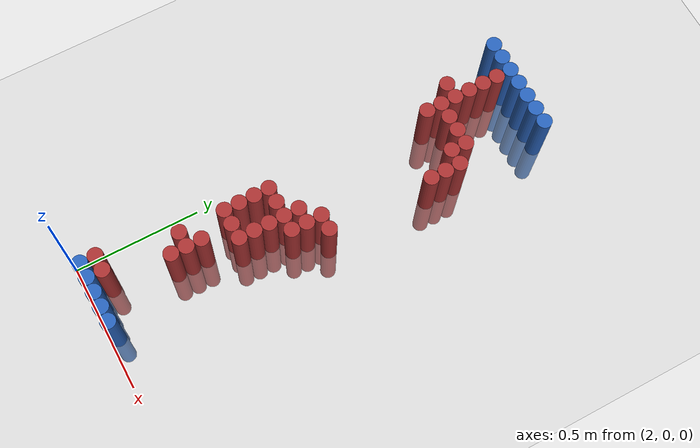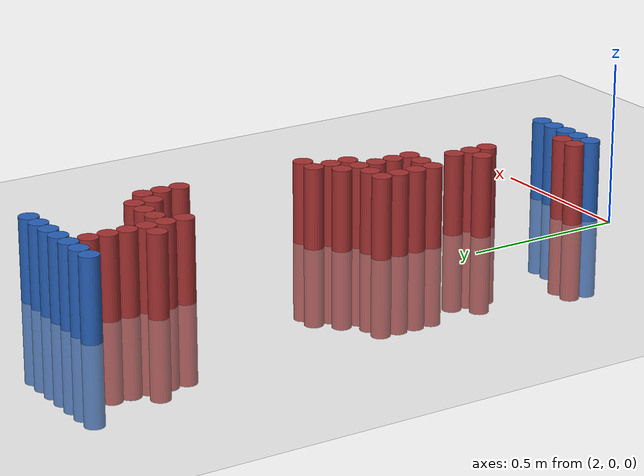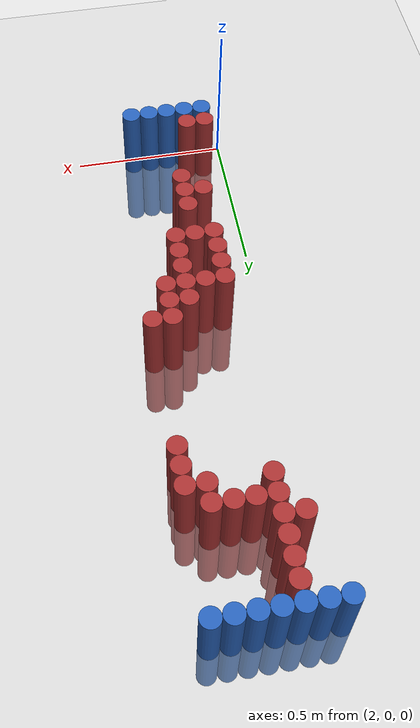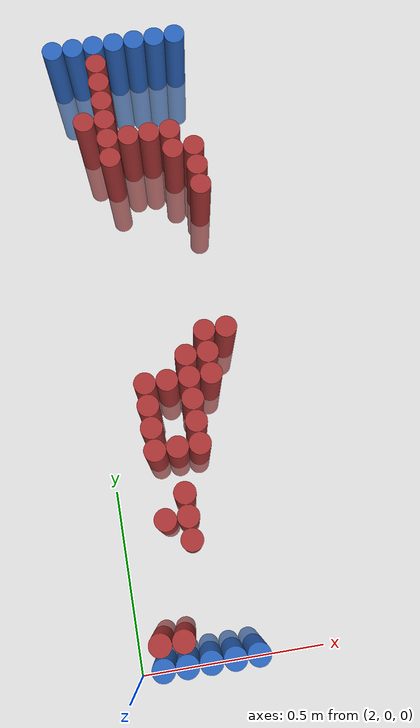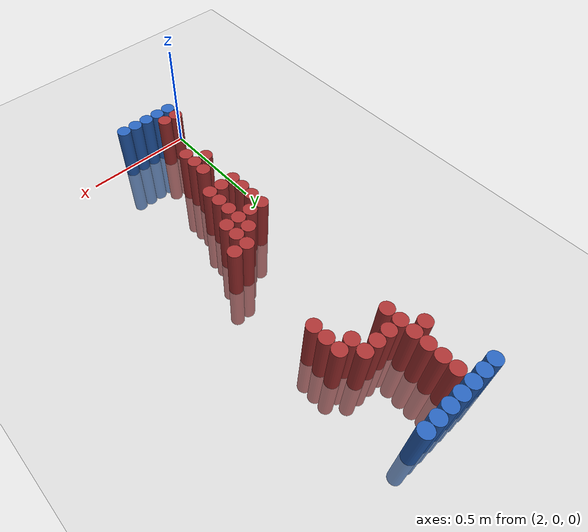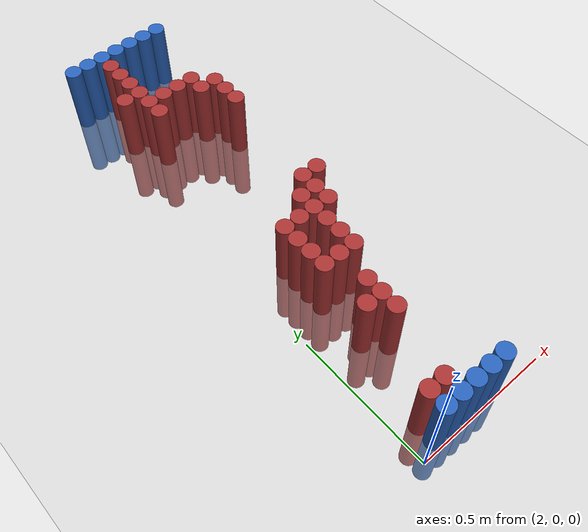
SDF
<sdf version="1.6">
 <world name="default">
  <model name="ground_plane">
   <static>1</static>
   <link name="link">
    <collision name="collision">
     <geometry><plane><normal>0 0 1</normal><size>100 100</size></plane></geometry>
     <surface><friction><ode><mu>100</mu><mu2>50</mu2></ode></friction></surface>
    </collision>
    <visual name="visual">
     <cast_shadows>0</cast_shadows>
     <geometry><plane><normal>0 0 1</normal><size>100 100</size></plane></geometry>
     <material>
      <script><uri>file://media/materials/scripts/gazebo.material</uri><name>Gazebo/Grey</name></script>
     </material>
    </visual>
   </link>
  </model>
  <model name="unit_cylinder_94">
   <static>1</static>
   <pose>2.010000 1.770000 0.000000 0.000000 0.000000 0.000000</pose>
   <link name="link">
    <inertial>
     <mass>1</mass>
     <inertia><ixx>0.145833</ixx><ixy>0</ixy><ixz>0</ixz><iyy>0.145833</iyy><iyz>0</iyz><izz>0.125</izz></inertia>
    </inertial>
    <collision name="collision">
     <geometry><cylinder><radius>0.030000</radius><length>0.5</length></cylinder></geometry>
    </collision>
    <visual name="visual">
     <geometry><cylinder><radius>0.030000</radius><length>0.5</length></cylinder></geometry>
     <material>
      <ambient>0.152000 0.379000 0.720000 1</ambient>
      <diffuse>0.152000 0.379000 0.720000 1</diffuse>
     </material>
     <material>
      <script><name>Gazebo/Grey</name><uri>file://media/materials/scripts/gazebo.material</uri></script>
     </material>
    </visual>
   </link>
  </model>
  <model name="unit_cylinder_95">
   <static>1</static>
   <pose>2.070000 1.770000 0.000000 0.000000 0.000000 0.000000</pose>
   <link name="link">
    <inertial>
     <mass>1</mass>
     <inertia><ixx>0.145833</ixx><ixy>0</ixy><ixz>0</ixz><iyy>0.145833</iyy><iyz>0</iyz><izz>0.125</izz></inertia>
    </inertial>
    <collision name="collision">
     <geometry><cylinder><radius>0.030000</radius><length>0.5</length></cylinder></geometry>
    </collision>
    <visual name="visual">
     <geometry><cylinder><radius>0.030000</radius><length>0.5</length></cylinder></geometry>
     <material>
      <ambient>0.152000 0.379000 0.720000 1</ambient>
      <diffuse>0.152000 0.379000 0.720000 1</diffuse>
     </material>
     <material>
      <script><name>Gazebo/Grey</name><uri>file://media/materials/scripts/gazebo.material</uri></script>
     </material>
    </visual>
   </link>
  </model>
  <model name="unit_cylinder_96">
   <static>1</static>
   <pose>2.130000 1.770000 0.000000 0.000000 0.000000 0.000000</pose>
   <link name="link">
    <inertial>
     <mass>1</mass>
     <inertia><ixx>0.145833</ixx><ixy>0</ixy><ixz>0</ixz><iyy>0.145833</iyy><iyz>0</iyz><izz>0.125</izz></inertia>
    </inertial>
    <collision name="collision">
     <geometry><cylinder><radius>0.030000</radius><length>0.5</length></cylinder></geometry>
    </collision>
    <visual name="visual">
     <geometry><cylinder><radius>0.030000</radius><length>0.5</length></cylinder></geometry>
     <material>
      <ambient>0.152000 0.379000 0.720000 1</ambient>
      <diffuse>0.152000 0.379000 0.720000 1</diffuse>
     </material>
     <material>
      <script><name>Gazebo/Grey</name><uri>file://media/materials/scripts/gazebo.material</uri></script>
     </material>
    </visual>
   </link>
  </model>
  <model name="unit_cylinder_97">
   <static>1</static>
   <pose>2.190000 1.770000 0.000000 0.000000 0.000000 0.000000</pose>
   <link name="link">
    <inertial>
     <mass>1</mass>
     <inertia><ixx>0.145833</ixx><ixy>0</ixy><ixz>0</ixz><iyy>0.145833</iyy><iyz>0</iyz><izz>0.125</izz></inertia>
    </inertial>
    <collision name="collision">
     <geometry><cylinder><radius>0.030000</radius><length>0.5</length></cylinder></geometry>
    </collision>
    <visual name="visual">
     <geometry><cylinder><radius>0.030000</radius><length>0.5</length></cylinder></geometry>
     <material>
      <ambient>0.152000 0.379000 0.720000 1</ambient>
      <diffuse>0.152000 0.379000 0.720000 1</diffuse>
     </material>
     <material>
      <script><name>Gazebo/Grey</name><uri>file://media/materials/scripts/gazebo.material</uri></script>
     </material>
    </visual>
   </link>
  </model>
  <model name="unit_cylinder_98">
   <static>1</static>
   <pose>2.250000 1.770000 0.000000 0.000000 0.000000 0.000000</pose>
   <link name="link">
    <inertial>
     <mass>1</mass>
     <inertia><ixx>0.145833</ixx><ixy>0</ixy><ixz>0</ixz><iyy>0.145833</iyy><iyz>0</iyz><izz>0.125</izz></inertia>
    </inertial>
    <collision name="collision">
     <geometry><cylinder><radius>0.030000</radius><length>0.5</length></cylinder></geometry>
    </collision>
    <visual name="visual">
     <geometry><cylinder><radius>0.030000</radius><length>0.5</length></cylinder></geometry>
     <material>
      <ambient>0.152000 0.379000 0.720000 1</ambient>
      <diffuse>0.152000 0.379000 0.720000 1</diffuse>
     </material>
     <material>
      <script><name>Gazebo/Grey</name><uri>file://media/materials/scripts/gazebo.material</uri></script>
     </material>
    </visual>
   </link>
  </model>
  <model name="unit_cylinder_99">
   <static>1</static>
   <pose>2.310000 1.770000 0.000000 0.000000 0.000000 0.000000</pose>
   <link name="link">
    <inertial>
     <mass>1</mass>
     <inertia><ixx>0.145833</ixx><ixy>0</ixy><ixz>0</ixz><iyy>0.145833</iyy><iyz>0</iyz><izz>0.125</izz></inertia>
    </inertial>
    <collision name="collision">
     <geometry><cylinder><radius>0.030000</radius><length>0.5</length></cylinder></geometry>
    </collision>
    <visual name="visual">
     <geometry><cylinder><radius>0.030000</radius><length>0.5</length></cylinder></geometry>
     <material>
      <ambient>0.152000 0.379000 0.720000 1</ambient>
      <diffuse>0.152000 0.379000 0.720000 1</diffuse>
     </material>
     <material>
      <script><name>Gazebo/Grey</name><uri>file://media/materials/scripts/gazebo.material</uri></script>
     </material>
    </visual>
   </link>
  </model>
  <model name="unit_cylinder_100">
   <static>1</static>
   <pose>2.370000 1.770000 0.000000 0.000000 0.000000 0.000000</pose>
   <link name="link">
    <inertial>
     <mass>1</mass>
     <inertia><ixx>0.145833</ixx><ixy>0</ixy><ixz>0</ixz><iyy>0.145833</iyy><iyz>0</iyz><izz>0.125</izz></inertia>
    </inertial>
    <collision name="collision">
     <geometry><cylinder><radius>0.030000</radius><length>0.5</length></cylinder></geometry>
    </collision>
    <visual name="visual">
     <geometry><cylinder><radius>0.030000</radius><length>0.5</length></cylinder></geometry>
     <material>
      <ambient>0.152000 0.379000 0.720000 1</ambient>
      <diffuse>0.152000 0.379000 0.720000 1</diffuse>
     </material>
     <material>
      <script><name>Gazebo/Grey</name><uri>file://media/materials/scripts/gazebo.material</uri></script>
     </material>
    </visual>
   </link>
  </model>
  <model name="unit_cylinder_125">
   <static>1</static>
   <pose>2.130000 1.710000 0.000000 0.000000 0.000000 0.000000</pose>
   <link name="link">
    <inertial>
     <mass>1</mass>
     <inertia><ixx>0.145833</ixx><ixy>0</ixy><ixz>0</ixz><iyy>0.145833</iyy><iyz>0</iyz><izz>0.125</izz></inertia>
    </inertial>
    <collision name="collision">
     <geometry><cylinder><radius>0.030000</radius><length>0.5</length></cylinder></geometry>
    </collision>
    <visual name="visual">
     <geometry><cylinder><radius>0.030000</radius><length>0.5</length></cylinder></geometry>
     <material>
      <ambient>0.648000 0.192000 0.192000 1</ambient>
      <diffuse>0.648000 0.192000 0.192000 1</diffuse>
     </material>
     <material>
      <script><name>Gazebo/Grey</name><uri>file://media/materials/scripts/gazebo.material</uri></script>
     </material>
    </visual>
   </link>
  </model>
  <model name="unit_cylinder_134">
   <static>1</static>
   <pose>2.130000 1.650000 0.000000 0.000000 0.000000 0.000000</pose>
   <link name="link">
    <inertial>
     <mass>1</mass>
     <inertia><ixx>0.145833</ixx><ixy>0</ixy><ixz>0</ixz><iyy>0.145833</iyy><iyz>0</iyz><izz>0.125</izz></inertia>
    </inertial>
    <collision name="collision">
     <geometry><cylinder><radius>0.030000</radius><length>0.5</length></cylinder></geometry>
    </collision>
    <visual name="visual">
     <geometry><cylinder><radius>0.030000</radius><length>0.5</length></cylinder></geometry>
     <material>
      <ambient>0.648000 0.192000 0.192000 1</ambient>
      <diffuse>0.648000 0.192000 0.192000 1</diffuse>
     </material>
     <material>
      <script><name>Gazebo/Grey</name><uri>file://media/materials/scripts/gazebo.material</uri></script>
     </material>
    </visual>
   </link>
  </model>
  <model name="unit_cylinder_143">
   <static>1</static>
   <pose>2.130000 1.590000 0.000000 0.000000 0.000000 0.000000</pose>
   <link name="link">
    <inertial>
     <mass>1</mass>
     <inertia><ixx>0.145833</ixx><ixy>0</ixy><ixz>0</ixz><iyy>0.145833</iyy><iyz>0</iyz><izz>0.125</izz></inertia>
    </inertial>
    <collision name="collision">
     <geometry><cylinder><radius>0.030000</radius><length>0.5</length></cylinder></geometry>
    </collision>
    <visual name="visual">
     <geometry><cylinder><radius>0.030000</radius><length>0.5</length></cylinder></geometry>
     <material>
      <ambient>0.648000 0.192000 0.192000 1</ambient>
      <diffuse>0.648000 0.192000 0.192000 1</diffuse>
     </material>
     <material>
      <script><name>Gazebo/Grey</name><uri>file://media/materials/scripts/gazebo.material</uri></script>
     </material>
    </visual>
   </link>
  </model>
  <model name="unit_cylinder_151">
   <static>1</static>
   <pose>2.070000 1.530000 0.000000 0.000000 0.000000 0.000000</pose>
   <link name="link">
    <inertial>
     <mass>1</mass>
     <inertia><ixx>0.145833</ixx><ixy>0</ixy><ixz>0</ixz><iyy>0.145833</iyy><iyz>0</iyz><izz>0.125</izz></inertia>
    </inertial>
    <collision name="collision">
     <geometry><cylinder><radius>0.030000</radius><length>0.5</length></cylinder></geometry>
    </collision>
    <visual name="visual">
     <geometry><cylinder><radius>0.030000</radius><length>0.5</length></cylinder></geometry>
     <material>
      <ambient>0.648000 0.192000 0.192000 1</ambient>
      <diffuse>0.648000 0.192000 0.192000 1</diffuse>
     </material>
     <material>
      <script><name>Gazebo/Grey</name><uri>file://media/materials/scripts/gazebo.material</uri></script>
     </material>
    </visual>
   </link>
  </model>
  <model name="unit_cylinder_152">
   <static>1</static>
   <pose>2.130000 1.530000 0.000000 0.000000 0.000000 0.000000</pose>
   <link name="link">
    <inertial>
     <mass>1</mass>
     <inertia><ixx>0.145833</ixx><ixy>0</ixy><ixz>0</ixz><iyy>0.145833</iyy><iyz>0</iyz><izz>0.125</izz></inertia>
    </inertial>
    <collision name="collision">
     <geometry><cylinder><radius>0.030000</radius><length>0.5</length></cylinder></geometry>
    </collision>
    <visual name="visual">
     <geometry><cylinder><radius>0.030000</radius><length>0.5</length></cylinder></geometry>
     <material>
      <ambient>0.648000 0.192000 0.192000 1</ambient>
      <diffuse>0.648000 0.192000 0.192000 1</diffuse>
     </material>
     <material>
      <script><name>Gazebo/Grey</name><uri>file://media/materials/scripts/gazebo.material</uri></script>
     </material>
    </visual>
   </link>
  </model>
  <model name="unit_cylinder_158">
   <static>1</static>
   <pose>2.130000 1.470000 0.000000 0.000000 0.000000 0.000000</pose>
   <link name="link">
    <inertial>
     <mass>1</mass>
     <inertia><ixx>0.145833</ixx><ixy>0</ixy><ixz>0</ixz><iyy>0.145833</iyy><iyz>0</iyz><izz>0.125</izz></inertia>
    </inertial>
    <collision name="collision">
     <geometry><cylinder><radius>0.030000</radius><length>0.5</length></cylinder></geometry>
    </collision>
    <visual name="visual">
     <geometry><cylinder><radius>0.030000</radius><length>0.5</length></cylinder></geometry>
     <material>
      <ambient>0.648000 0.192000 0.192000 1</ambient>
      <diffuse>0.648000 0.192000 0.192000 1</diffuse>
     </material>
     <material>
      <script><name>Gazebo/Grey</name><uri>file://media/materials/scripts/gazebo.material</uri></script>
     </material>
    </visual>
   </link>
  </model>
  <model name="unit_cylinder_159">
   <static>1</static>
   <pose>2.190000 1.470000 0.000000 0.000000 0.000000 0.000000</pose>
   <link name="link">
    <inertial>
     <mass>1</mass>
     <inertia><ixx>0.145833</ixx><ixy>0</ixy><ixz>0</ixz><iyy>0.145833</iyy><iyz>0</iyz><izz>0.125</izz></inertia>
    </inertial>
    <collision name="collision">
     <geometry><cylinder><radius>0.030000</radius><length>0.5</length></cylinder></geometry>
    </collision>
    <visual name="visual">
     <geometry><cylinder><radius>0.030000</radius><length>0.5</length></cylinder></geometry>
     <material>
      <ambient>0.648000 0.192000 0.192000 1</ambient>
      <diffuse>0.648000 0.192000 0.192000 1</diffuse>
     </material>
     <material>
      <script><name>Gazebo/Grey</name><uri>file://media/materials/scripts/gazebo.material</uri></script>
     </material>
    </visual>
   </link>
  </model>
  <model name="unit_cylinder_160">
   <static>1</static>
   <pose>2.250000 1.470000 0.000000 0.000000 0.000000 0.000000</pose>
   <link name="link">
    <inertial>
     <mass>1</mass>
     <inertia><ixx>0.145833</ixx><ixy>0</ixy><ixz>0</ixz><iyy>0.145833</iyy><iyz>0</iyz><izz>0.125</izz></inertia>
    </inertial>
    <collision name="collision">
     <geometry><cylinder><radius>0.030000</radius><length>0.5</length></cylinder></geometry>
    </collision>
    <visual name="visual">
     <geometry><cylinder><radius>0.030000</radius><length>0.5</length></cylinder></geometry>
     <material>
      <ambient>0.648000 0.192000 0.192000 1</ambient>
      <diffuse>0.648000 0.192000 0.192000 1</diffuse>
     </material>
     <material>
      <script><name>Gazebo/Grey</name><uri>file://media/materials/scripts/gazebo.material</uri></script>
     </material>
    </visual>
   </link>
  </model>
  <model name="unit_cylinder_161">
   <static>1</static>
   <pose>2.310000 1.470000 0.000000 0.000000 0.000000 0.000000</pose>
   <link name="link">
    <inertial>
     <mass>1</mass>
     <inertia><ixx>0.145833</ixx><ixy>0</ixy><ixz>0</ixz><iyy>0.145833</iyy><iyz>0</iyz><izz>0.125</izz></inertia>
    </inertial>
    <collision name="collision">
     <geometry><cylinder><radius>0.030000</radius><length>0.5</length></cylinder></geometry>
    </collision>
    <visual name="visual">
     <geometry><cylinder><radius>0.030000</radius><length>0.5</length></cylinder></geometry>
     <material>
      <ambient>0.648000 0.192000 0.192000 1</ambient>
      <diffuse>0.648000 0.192000 0.192000 1</diffuse>
     </material>
     <material>
      <script><name>Gazebo/Grey</name><uri>file://media/materials/scripts/gazebo.material</uri></script>
     </material>
    </visual>
   </link>
  </model>
  <model name="unit_cylinder_168">
   <static>1</static>
   <pose>2.130000 1.410000 0.000000 0.000000 0.000000 0.000000</pose>
   <link name="link">
    <inertial>
     <mass>1</mass>
     <inertia><ixx>0.145833</ixx><ixy>0</ixy><ixz>0</ixz><iyy>0.145833</iyy><iyz>0</iyz><izz>0.125</izz></inertia>
    </inertial>
    <collision name="collision">
     <geometry><cylinder><radius>0.030000</radius><length>0.5</length></cylinder></geometry>
    </collision>
    <visual name="visual">
     <geometry><cylinder><radius>0.030000</radius><length>0.5</length></cylinder></geometry>
     <material>
      <ambient>0.648000 0.192000 0.192000 1</ambient>
      <diffuse>0.648000 0.192000 0.192000 1</diffuse>
     </material>
     <material>
      <script><name>Gazebo/Grey</name><uri>file://media/materials/scripts/gazebo.material</uri></script>
     </material>
    </visual>
   </link>
  </model>
  <model name="unit_cylinder_169">
   <static>1</static>
   <pose>2.310000 1.410000 0.000000 0.000000 0.000000 0.000000</pose>
   <link name="link">
    <inertial>
     <mass>1</mass>
     <inertia><ixx>0.145833</ixx><ixy>0</ixy><ixz>0</ixz><iyy>0.145833</iyy><iyz>0</iyz><izz>0.125</izz></inertia>
    </inertial>
    <collision name="collision">
     <geometry><cylinder><radius>0.030000</radius><length>0.5</length></cylinder></geometry>
    </collision>
    <visual name="visual">
     <geometry><cylinder><radius>0.030000</radius><length>0.5</length></cylinder></geometry>
     <material>
      <ambient>0.648000 0.192000 0.192000 1</ambient>
      <diffuse>0.648000 0.192000 0.192000 1</diffuse>
     </material>
     <material>
      <script><name>Gazebo/Grey</name><uri>file://media/materials/scripts/gazebo.material</uri></script>
     </material>
    </visual>
   </link>
  </model>
  <model name="unit_cylinder_170">
   <static>1</static>
   <pose>2.370000 1.410000 0.000000 0.000000 0.000000 0.000000</pose>
   <link name="link">
    <inertial>
     <mass>1</mass>
     <inertia><ixx>0.145833</ixx><ixy>0</ixy><ixz>0</ixz><iyy>0.145833</iyy><iyz>0</iyz><izz>0.125</izz></inertia>
    </inertial>
    <collision name="collision">
     <geometry><cylinder><radius>0.030000</radius><length>0.5</length></cylinder></geometry>
    </collision>
    <visual name="visual">
     <geometry><cylinder><radius>0.030000</radius><length>0.5</length></cylinder></geometry>
     <material>
      <ambient>0.648000 0.192000 0.192000 1</ambient>
      <diffuse>0.648000 0.192000 0.192000 1</diffuse>
     </material>
     <material>
      <script><name>Gazebo/Grey</name><uri>file://media/materials/scripts/gazebo.material</uri></script>
     </material>
    </visual>
   </link>
  </model>
  <model name="unit_cylinder_177">
   <static>1</static>
   <pose>2.370000 1.350000 0.000000 0.000000 0.000000 0.000000</pose>
   <link name="link">
    <inertial>
     <mass>1</mass>
     <inertia><ixx>0.145833</ixx><ixy>0</ixy><ixz>0</ixz><iyy>0.145833</iyy><iyz>0</iyz><izz>0.125</izz></inertia>
    </inertial>
    <collision name="collision">
     <geometry><cylinder><radius>0.030000</radius><length>0.5</length></cylinder></geometry>
    </collision>
    <visual name="visual">
     <geometry><cylinder><radius>0.030000</radius><length>0.5</length></cylinder></geometry>
     <material>
      <ambient>0.648000 0.192000 0.192000 1</ambient>
      <diffuse>0.648000 0.192000 0.192000 1</diffuse>
     </material>
     <material>
      <script><name>Gazebo/Grey</name><uri>file://media/materials/scripts/gazebo.material</uri></script>
     </material>
    </visual>
   </link>
  </model>
  <model name="unit_cylinder_187">
   <static>1</static>
   <pose>2.370000 1.290000 0.000000 0.000000 0.000000 0.000000</pose>
   <link name="link">
    <inertial>
     <mass>1</mass>
     <inertia><ixx>0.145833</ixx><ixy>0</ixy><ixz>0</ixz><iyy>0.145833</iyy><iyz>0</iyz><izz>0.125</izz></inertia>
    </inertial>
    <collision name="collision">
     <geometry><cylinder><radius>0.030000</radius><length>0.5</length></cylinder></geometry>
    </collision>
    <visual name="visual">
     <geometry><cylinder><radius>0.030000</radius><length>0.5</length></cylinder></geometry>
     <material>
      <ambient>0.648000 0.192000 0.192000 1</ambient>
      <diffuse>0.648000 0.192000 0.192000 1</diffuse>
     </material>
     <material>
      <script><name>Gazebo/Grey</name><uri>file://media/materials/scripts/gazebo.material</uri></script>
     </material>
    </visual>
   </link>
  </model>
  <model name="unit_cylinder_224">
   <static>1</static>
   <pose>2.310000 0.870000 0.000000 0.000000 0.000000 0.000000</pose>
   <link name="link">
    <inertial>
     <mass>1</mass>
     <inertia><ixx>0.145833</ixx><ixy>0</ixy><ixz>0</ixz><iyy>0.145833</iyy><iyz>0</iyz><izz>0.125</izz></inertia>
    </inertial>
    <collision name="collision">
     <geometry><cylinder><radius>0.030000</radius><length>0.5</length></cylinder></geometry>
    </collision>
    <visual name="visual">
     <geometry><cylinder><radius>0.030000</radius><length>0.5</length></cylinder></geometry>
     <material>
      <ambient>0.648000 0.192000 0.192000 1</ambient>
      <diffuse>0.648000 0.192000 0.192000 1</diffuse>
     </material>
     <material>
      <script><name>Gazebo/Grey</name><uri>file://media/materials/scripts/gazebo.material</uri></script>
     </material>
    </visual>
   </link>
  </model>
  <model name="unit_cylinder_225">
   <static>1</static>
   <pose>2.370000 0.870000 0.000000 0.000000 0.000000 0.000000</pose>
   <link name="link">
    <inertial>
     <mass>1</mass>
     <inertia><ixx>0.145833</ixx><ixy>0</ixy><ixz>0</ixz><iyy>0.145833</iyy><iyz>0</iyz><izz>0.125</izz></inertia>
    </inertial>
    <collision name="collision">
     <geometry><cylinder><radius>0.030000</radius><length>0.5</length></cylinder></geometry>
    </collision>
    <visual name="visual">
     <geometry><cylinder><radius>0.030000</radius><length>0.5</length></cylinder></geometry>
     <material>
      <ambient>0.648000 0.192000 0.192000 1</ambient>
      <diffuse>0.648000 0.192000 0.192000 1</diffuse>
     </material>
     <material>
      <script><name>Gazebo/Grey</name><uri>file://media/materials/scripts/gazebo.material</uri></script>
     </material>
    </visual>
   </link>
  </model>
  <model name="unit_cylinder_227">
   <static>1</static>
   <pose>2.250000 0.810000 0.000000 0.000000 0.000000 0.000000</pose>
   <link name="link">
    <inertial>
     <mass>1</mass>
     <inertia><ixx>0.145833</ixx><ixy>0</ixy><ixz>0</ixz><iyy>0.145833</iyy><iyz>0</iyz><izz>0.125</izz></inertia>
    </inertial>
    <collision name="collision">
     <geometry><cylinder><radius>0.030000</radius><length>0.5</length></cylinder></geometry>
    </collision>
    <visual name="visual">
     <geometry><cylinder><radius>0.030000</radius><length>0.5</length></cylinder></geometry>
     <material>
      <ambient>0.648000 0.192000 0.192000 1</ambient>
      <diffuse>0.648000 0.192000 0.192000 1</diffuse>
     </material>
     <material>
      <script><name>Gazebo/Grey</name><uri>file://media/materials/scripts/gazebo.material</uri></script>
     </material>
    </visual>
   </link>
  </model>
  <model name="unit_cylinder_228">
   <static>1</static>
   <pose>2.310000 0.810000 0.000000 0.000000 0.000000 0.000000</pose>
   <link name="link">
    <inertial>
     <mass>1</mass>
     <inertia><ixx>0.145833</ixx><ixy>0</ixy><ixz>0</ixz><iyy>0.145833</iyy><iyz>0</iyz><izz>0.125</izz></inertia>
    </inertial>
    <collision name="collision">
     <geometry><cylinder><radius>0.030000</radius><length>0.5</length></cylinder></geometry>
    </collision>
    <visual name="visual">
     <geometry><cylinder><radius>0.030000</radius><length>0.5</length></cylinder></geometry>
     <material>
      <ambient>0.648000 0.192000 0.192000 1</ambient>
      <diffuse>0.648000 0.192000 0.192000 1</diffuse>
     </material>
     <material>
      <script><name>Gazebo/Grey</name><uri>file://media/materials/scripts/gazebo.material</uri></script>
     </material>
    </visual>
   </link>
  </model>
  <model name="unit_cylinder_230">
   <static>1</static>
   <pose>2.130000 0.750000 0.000000 0.000000 0.000000 0.000000</pose>
   <link name="link">
    <inertial>
     <mass>1</mass>
     <inertia><ixx>0.145833</ixx><ixy>0</ixy><ixz>0</ixz><iyy>0.145833</iyy><iyz>0</iyz><izz>0.125</izz></inertia>
    </inertial>
    <collision name="collision">
     <geometry><cylinder><radius>0.030000</radius><length>0.5</length></cylinder></geometry>
    </collision>
    <visual name="visual">
     <geometry><cylinder><radius>0.030000</radius><length>0.5</length></cylinder></geometry>
     <material>
      <ambient>0.648000 0.192000 0.192000 1</ambient>
      <diffuse>0.648000 0.192000 0.192000 1</diffuse>
     </material>
     <material>
      <script><name>Gazebo/Grey</name><uri>file://media/materials/scripts/gazebo.material</uri></script>
     </material>
    </visual>
   </link>
  </model>
  <model name="unit_cylinder_231">
   <static>1</static>
   <pose>2.190000 0.750000 0.000000 0.000000 0.000000 0.000000</pose>
   <link name="link">
    <inertial>
     <mass>1</mass>
     <inertia><ixx>0.145833</ixx><ixy>0</ixy><ixz>0</ixz><iyy>0.145833</iyy><iyz>0</iyz><izz>0.125</izz></inertia>
    </inertial>
    <collision name="collision">
     <geometry><cylinder><radius>0.030000</radius><length>0.5</length></cylinder></geometry>
    </collision>
    <visual name="visual">
     <geometry><cylinder><radius>0.030000</radius><length>0.5</length></cylinder></geometry>
     <material>
      <ambient>0.648000 0.192000 0.192000 1</ambient>
      <diffuse>0.648000 0.192000 0.192000 1</diffuse>
     </material>
     <material>
      <script><name>Gazebo/Grey</name><uri>file://media/materials/scripts/gazebo.material</uri></script>
     </material>
    </visual>
   </link>
  </model>
  <model name="unit_cylinder_232">
   <static>1</static>
   <pose>2.250000 0.750000 0.000000 0.000000 0.000000 0.000000</pose>
   <link name="link">
    <inertial>
     <mass>1</mass>
     <inertia><ixx>0.145833</ixx><ixy>0</ixy><ixz>0</ixz><iyy>0.145833</iyy><iyz>0</iyz><izz>0.125</izz></inertia>
    </inertial>
    <collision name="collision">
     <geometry><cylinder><radius>0.030000</radius><length>0.5</length></cylinder></geometry>
    </collision>
    <visual name="visual">
     <geometry><cylinder><radius>0.030000</radius><length>0.5</length></cylinder></geometry>
     <material>
      <ambient>0.648000 0.192000 0.192000 1</ambient>
      <diffuse>0.648000 0.192000 0.192000 1</diffuse>
     </material>
     <material>
      <script><name>Gazebo/Grey</name><uri>file://media/materials/scripts/gazebo.material</uri></script>
     </material>
    </visual>
   </link>
  </model>
  <model name="unit_cylinder_233">
   <static>1</static>
   <pose>2.310000 0.750000 0.000000 0.000000 0.000000 0.000000</pose>
   <link name="link">
    <inertial>
     <mass>1</mass>
     <inertia><ixx>0.145833</ixx><ixy>0</ixy><ixz>0</ixz><iyy>0.145833</iyy><iyz>0</iyz><izz>0.125</izz></inertia>
    </inertial>
    <collision name="collision">
     <geometry><cylinder><radius>0.030000</radius><length>0.5</length></cylinder></geometry>
    </collision>
    <visual name="visual">
     <geometry><cylinder><radius>0.030000</radius><length>0.5</length></cylinder></geometry>
     <material>
      <ambient>0.648000 0.192000 0.192000 1</ambient>
      <diffuse>0.648000 0.192000 0.192000 1</diffuse>
     </material>
     <material>
      <script><name>Gazebo/Grey</name><uri>file://media/materials/scripts/gazebo.material</uri></script>
     </material>
    </visual>
   </link>
  </model>
  <model name="unit_cylinder_235">
   <static>1</static>
   <pose>2.130000 0.690000 0.000000 0.000000 0.000000 0.000000</pose>
   <link name="link">
    <inertial>
     <mass>1</mass>
     <inertia><ixx>0.145833</ixx><ixy>0</ixy><ixz>0</ixz><iyy>0.145833</iyy><iyz>0</iyz><izz>0.125</izz></inertia>
    </inertial>
    <collision name="collision">
     <geometry><cylinder><radius>0.030000</radius><length>0.5</length></cylinder></geometry>
    </collision>
    <visual name="visual">
     <geometry><cylinder><radius>0.030000</radius><length>0.5</length></cylinder></geometry>
     <material>
      <ambient>0.648000 0.192000 0.192000 1</ambient>
      <diffuse>0.648000 0.192000 0.192000 1</diffuse>
     </material>
     <material>
      <script><name>Gazebo/Grey</name><uri>file://media/materials/scripts/gazebo.material</uri></script>
     </material>
    </visual>
   </link>
  </model>
  <model name="unit_cylinder_236">
   <static>1</static>
   <pose>2.250000 0.690000 0.000000 0.000000 0.000000 0.000000</pose>
   <link name="link">
    <inertial>
     <mass>1</mass>
     <inertia><ixx>0.145833</ixx><ixy>0</ixy><ixz>0</ixz><iyy>0.145833</iyy><iyz>0</iyz><izz>0.125</izz></inertia>
    </inertial>
    <collision name="collision">
     <geometry><cylinder><radius>0.030000</radius><length>0.5</length></cylinder></geometry>
    </collision>
    <visual name="visual">
     <geometry><cylinder><radius>0.030000</radius><length>0.5</length></cylinder></geometry>
     <material>
      <ambient>0.648000 0.192000 0.192000 1</ambient>
      <diffuse>0.648000 0.192000 0.192000 1</diffuse>
     </material>
     <material>
      <script><name>Gazebo/Grey</name><uri>file://media/materials/scripts/gazebo.material</uri></script>
     </material>
    </visual>
   </link>
  </model>
  <model name="unit_cylinder_239">
   <static>1</static>
   <pose>2.130000 0.630000 0.000000 0.000000 0.000000 0.000000</pose>
   <link name="link">
    <inertial>
     <mass>1</mass>
     <inertia><ixx>0.145833</ixx><ixy>0</ixy><ixz>0</ixz><iyy>0.145833</iyy><iyz>0</iyz><izz>0.125</izz></inertia>
    </inertial>
    <collision name="collision">
     <geometry><cylinder><radius>0.030000</radius><length>0.5</length></cylinder></geometry>
    </collision>
    <visual name="visual">
     <geometry><cylinder><radius>0.030000</radius><length>0.5</length></cylinder></geometry>
     <material>
      <ambient>0.648000 0.192000 0.192000 1</ambient>
      <diffuse>0.648000 0.192000 0.192000 1</diffuse>
     </material>
     <material>
      <script><name>Gazebo/Grey</name><uri>file://media/materials/scripts/gazebo.material</uri></script>
     </material>
    </visual>
   </link>
  </model>
  <model name="unit_cylinder_240">
   <static>1</static>
   <pose>2.250000 0.630000 0.000000 0.000000 0.000000 0.000000</pose>
   <link name="link">
    <inertial>
     <mass>1</mass>
     <inertia><ixx>0.145833</ixx><ixy>0</ixy><ixz>0</ixz><iyy>0.145833</iyy><iyz>0</iyz><izz>0.125</izz></inertia>
    </inertial>
    <collision name="collision">
     <geometry><cylinder><radius>0.030000</radius><length>0.5</length></cylinder></geometry>
    </collision>
    <visual name="visual">
     <geometry><cylinder><radius>0.030000</radius><length>0.5</length></cylinder></geometry>
     <material>
      <ambient>0.648000 0.192000 0.192000 1</ambient>
      <diffuse>0.648000 0.192000 0.192000 1</diffuse>
     </material>
     <material>
      <script><name>Gazebo/Grey</name><uri>file://media/materials/scripts/gazebo.material</uri></script>
     </material>
    </visual>
   </link>
  </model>
  <model name="unit_cylinder_242">
   <static>1</static>
   <pose>2.130000 0.570000 0.000000 0.000000 0.000000 0.000000</pose>
   <link name="link">
    <inertial>
     <mass>1</mass>
     <inertia><ixx>0.145833</ixx><ixy>0</ixy><ixz>0</ixz><iyy>0.145833</iyy><iyz>0</iyz><izz>0.125</izz></inertia>
    </inertial>
    <collision name="collision">
     <geometry><cylinder><radius>0.030000</radius><length>0.5</length></cylinder></geometry>
    </collision>
    <visual name="visual">
     <geometry><cylinder><radius>0.030000</radius><length>0.5</length></cylinder></geometry>
     <material>
      <ambient>0.648000 0.192000 0.192000 1</ambient>
      <diffuse>0.648000 0.192000 0.192000 1</diffuse>
     </material>
     <material>
      <script><name>Gazebo/Grey</name><uri>file://media/materials/scripts/gazebo.material</uri></script>
     </material>
    </visual>
   </link>
  </model>
  <model name="unit_cylinder_243">
   <static>1</static>
   <pose>2.190000 0.570000 0.000000 0.000000 0.000000 0.000000</pose>
   <link name="link">
    <inertial>
     <mass>1</mass>
     <inertia><ixx>0.145833</ixx><ixy>0</ixy><ixz>0</ixz><iyy>0.145833</iyy><iyz>0</iyz><izz>0.125</izz></inertia>
    </inertial>
    <collision name="collision">
     <geometry><cylinder><radius>0.030000</radius><length>0.5</length></cylinder></geometry>
    </collision>
    <visual name="visual">
     <geometry><cylinder><radius>0.030000</radius><length>0.5</length></cylinder></geometry>
     <material>
      <ambient>0.648000 0.192000 0.192000 1</ambient>
      <diffuse>0.648000 0.192000 0.192000 1</diffuse>
     </material>
     <material>
      <script><name>Gazebo/Grey</name><uri>file://media/materials/scripts/gazebo.material</uri></script>
     </material>
    </visual>
   </link>
  </model>
  <model name="unit_cylinder_244">
   <static>1</static>
   <pose>2.250000 0.570000 0.000000 0.000000 0.000000 0.000000</pose>
   <link name="link">
    <inertial>
     <mass>1</mass>
     <inertia><ixx>0.145833</ixx><ixy>0</ixy><ixz>0</ixz><iyy>0.145833</iyy><iyz>0</iyz><izz>0.125</izz></inertia>
    </inertial>
    <collision name="collision">
     <geometry><cylinder><radius>0.030000</radius><length>0.5</length></cylinder></geometry>
    </collision>
    <visual name="visual">
     <geometry><cylinder><radius>0.030000</radius><length>0.5</length></cylinder></geometry>
     <material>
      <ambient>0.648000 0.192000 0.192000 1</ambient>
      <diffuse>0.648000 0.192000 0.192000 1</diffuse>
     </material>
     <material>
      <script><name>Gazebo/Grey</name><uri>file://media/materials/scripts/gazebo.material</uri></script>
     </material>
    </visual>
   </link>
  </model>
  <model name="unit_cylinder_254">
   <static>1</static>
   <pose>2.190000 0.450000 0.000000 0.000000 0.000000 0.000000</pose>
   <link name="link">
    <inertial>
     <mass>1</mass>
     <inertia><ixx>0.145833</ixx><ixy>0</ixy><ixz>0</ixz><iyy>0.145833</iyy><iyz>0</iyz><izz>0.125</izz></inertia>
    </inertial>
    <collision name="collision">
     <geometry><cylinder><radius>0.030000</radius><length>0.5</length></cylinder></geometry>
    </collision>
    <visual name="visual">
     <geometry><cylinder><radius>0.030000</radius><length>0.5</length></cylinder></geometry>
     <material>
      <ambient>0.648000 0.192000 0.192000 1</ambient>
      <diffuse>0.648000 0.192000 0.192000 1</diffuse>
     </material>
     <material>
      <script><name>Gazebo/Grey</name><uri>file://media/materials/scripts/gazebo.material</uri></script>
     </material>
    </visual>
   </link>
  </model>
  <model name="unit_cylinder_258">
   <static>1</static>
   <pose>2.130000 0.390000 0.000000 0.000000 0.000000 0.000000</pose>
   <link name="link">
    <inertial>
     <mass>1</mass>
     <inertia><ixx>0.145833</ixx><ixy>0</ixy><ixz>0</ixz><iyy>0.145833</iyy><iyz>0</iyz><izz>0.125</izz></inertia>
    </inertial>
    <collision name="collision">
     <geometry><cylinder><radius>0.030000</radius><length>0.5</length></cylinder></geometry>
    </collision>
    <visual name="visual">
     <geometry><cylinder><radius>0.030000</radius><length>0.5</length></cylinder></geometry>
     <material>
      <ambient>0.648000 0.192000 0.192000 1</ambient>
      <diffuse>0.648000 0.192000 0.192000 1</diffuse>
     </material>
     <material>
      <script><name>Gazebo/Grey</name><uri>file://media/materials/scripts/gazebo.material</uri></script>
     </material>
    </visual>
   </link>
  </model>
  <model name="unit_cylinder_259">
   <static>1</static>
   <pose>2.190000 0.390000 0.000000 0.000000 0.000000 0.000000</pose>
   <link name="link">
    <inertial>
     <mass>1</mass>
     <inertia><ixx>0.145833</ixx><ixy>0</ixy><ixz>0</ixz><iyy>0.145833</iyy><iyz>0</iyz><izz>0.125</izz></inertia>
    </inertial>
    <collision name="collision">
     <geometry><cylinder><radius>0.030000</radius><length>0.5</length></cylinder></geometry>
    </collision>
    <visual name="visual">
     <geometry><cylinder><radius>0.030000</radius><length>0.5</length></cylinder></geometry>
     <material>
      <ambient>0.648000 0.192000 0.192000 1</ambient>
      <diffuse>0.648000 0.192000 0.192000 1</diffuse>
     </material>
     <material>
      <script><name>Gazebo/Grey</name><uri>file://media/materials/scripts/gazebo.material</uri></script>
     </material>
    </visual>
   </link>
  </model>
  <model name="unit_cylinder_262">
   <static>1</static>
   <pose>2.190000 0.330000 0.000000 0.000000 0.000000 0.000000</pose>
   <link name="link">
    <inertial>
     <mass>1</mass>
     <inertia><ixx>0.145833</ixx><ixy>0</ixy><ixz>0</ixz><iyy>0.145833</iyy><iyz>0</iyz><izz>0.125</izz></inertia>
    </inertial>
    <collision name="collision">
     <geometry><cylinder><radius>0.030000</radius><length>0.5</length></cylinder></geometry>
    </collision>
    <visual name="visual">
     <geometry><cylinder><radius>0.030000</radius><length>0.5</length></cylinder></geometry>
     <material>
      <ambient>0.648000 0.192000 0.192000 1</ambient>
      <diffuse>0.648000 0.192000 0.192000 1</diffuse>
     </material>
     <material>
      <script><name>Gazebo/Grey</name><uri>file://media/materials/scripts/gazebo.material</uri></script>
     </material>
    </visual>
   </link>
  </model>
  <model name="unit_cylinder_285">
   <static>1</static>
   <pose>2.070000 0.090000 0.000000 0.000000 0.000000 0.000000</pose>
   <link name="link">
    <inertial>
     <mass>1</mass>
     <inertia><ixx>0.145833</ixx><ixy>0</ixy><ixz>0</ixz><iyy>0.145833</iyy><iyz>0</iyz><izz>0.125</izz></inertia>
    </inertial>
    <collision name="collision">
     <geometry><cylinder><radius>0.030000</radius><length>0.5</length></cylinder></geometry>
    </collision>
    <visual name="visual">
     <geometry><cylinder><radius>0.030000</radius><length>0.5</length></cylinder></geometry>
     <material>
      <ambient>0.648000 0.192000 0.192000 1</ambient>
      <diffuse>0.648000 0.192000 0.192000 1</diffuse>
     </material>
     <material>
      <script><name>Gazebo/Grey</name><uri>file://media/materials/scripts/gazebo.material</uri></script>
     </material>
    </visual>
   </link>
  </model>
  <model name="unit_cylinder_286">
   <static>1</static>
   <pose>2.130000 0.090000 0.000000 0.000000 0.000000 0.000000</pose>
   <link name="link">
    <inertial>
     <mass>1</mass>
     <inertia><ixx>0.145833</ixx><ixy>0</ixy><ixz>0</ixz><iyy>0.145833</iyy><iyz>0</iyz><izz>0.125</izz></inertia>
    </inertial>
    <collision name="collision">
     <geometry><cylinder><radius>0.030000</radius><length>0.5</length></cylinder></geometry>
    </collision>
    <visual name="visual">
     <geometry><cylinder><radius>0.030000</radius><length>0.5</length></cylinder></geometry>
     <material>
      <ambient>0.648000 0.192000 0.192000 1</ambient>
      <diffuse>0.648000 0.192000 0.192000 1</diffuse>
     </material>
     <material>
      <script><name>Gazebo/Grey</name><uri>file://media/materials/scripts/gazebo.material</uri></script>
     </material>
    </visual>
   </link>
  </model>
  <model name="unit_cylinder_300">
   <static>1</static>
   <pose>2.070000 0.030000 0.000000 0.000000 0.000000 0.000000</pose>
   <link name="link">
    <inertial>
     <mass>1</mass>
     <inertia><ixx>0.145833</ixx><ixy>0</ixy><ixz>0</ixz><iyy>0.145833</iyy><iyz>0</iyz><izz>0.125</izz></inertia>
    </inertial>
    <collision name="collision">
     <geometry><cylinder><radius>0.030000</radius><length>0.5</length></cylinder></geometry>
    </collision>
    <visual name="visual">
     <geometry><cylinder><radius>0.030000</radius><length>0.5</length></cylinder></geometry>
     <material>
      <ambient>0.152000 0.379000 0.720000 1</ambient>
      <diffuse>0.152000 0.379000 0.720000 1</diffuse>
     </material>
     <material>
      <script><name>Gazebo/Grey</name><uri>file://media/materials/scripts/gazebo.material</uri></script>
     </material>
    </visual>
   </link>
  </model>
  <model name="unit_cylinder_301">
   <static>1</static>
   <pose>2.130000 0.030000 0.000000 0.000000 0.000000 0.000000</pose>
   <link name="link">
    <inertial>
     <mass>1</mass>
     <inertia><ixx>0.145833</ixx><ixy>0</ixy><ixz>0</ixz><iyy>0.145833</iyy><iyz>0</iyz><izz>0.125</izz></inertia>
    </inertial>
    <collision name="collision">
     <geometry><cylinder><radius>0.030000</radius><length>0.5</length></cylinder></geometry>
    </collision>
    <visual name="visual">
     <geometry><cylinder><radius>0.030000</radius><length>0.5</length></cylinder></geometry>
     <material>
      <ambient>0.152000 0.379000 0.720000 1</ambient>
      <diffuse>0.152000 0.379000 0.720000 1</diffuse>
     </material>
     <material>
      <script><name>Gazebo/Grey</name><uri>file://media/materials/scripts/gazebo.material</uri></script>
     </material>
    </visual>
   </link>
  </model>
  <model name="unit_cylinder_302">
   <static>1</static>
   <pose>2.190000 0.030000 0.000000 0.000000 0.000000 0.000000</pose>
   <link name="link">
    <inertial>
     <mass>1</mass>
     <inertia><ixx>0.145833</ixx><ixy>0</ixy><ixz>0</ixz><iyy>0.145833</iyy><iyz>0</iyz><izz>0.125</izz></inertia>
    </inertial>
    <collision name="collision">
     <geometry><cylinder><radius>0.030000</radius><length>0.5</length></cylinder></geometry>
    </collision>
    <visual name="visual">
     <geometry><cylinder><radius>0.030000</radius><length>0.5</length></cylinder></geometry>
     <material>
      <ambient>0.152000 0.379000 0.720000 1</ambient>
      <diffuse>0.152000 0.379000 0.720000 1</diffuse>
     </material>
     <material>
      <script><name>Gazebo/Grey</name><uri>file://media/materials/scripts/gazebo.material</uri></script>
     </material>
    </visual>
   </link>
  </model>
  <model name="unit_cylinder_303">
   <static>1</static>
   <pose>2.250000 0.030000 0.000000 0.000000 0.000000 0.000000</pose>
   <link name="link">
    <inertial>
     <mass>1</mass>
     <inertia><ixx>0.145833</ixx><ixy>0</ixy><ixz>0</ixz><iyy>0.145833</iyy><iyz>0</iyz><izz>0.125</izz></inertia>
    </inertial>
    <collision name="collision">
     <geometry><cylinder><radius>0.030000</radius><length>0.5</length></cylinder></geometry>
    </collision>
    <visual name="visual">
     <geometry><cylinder><radius>0.030000</radius><length>0.5</length></cylinder></geometry>
     <material>
      <ambient>0.152000 0.379000 0.720000 1</ambient>
      <diffuse>0.152000 0.379000 0.720000 1</diffuse>
     </material>
     <material>
      <script><name>Gazebo/Grey</name><uri>file://media/materials/scripts/gazebo.material</uri></script>
     </material>
    </visual>
   </link>
  </model>
  <model name="unit_cylinder_304">
   <static>1</static>
   <pose>2.310000 0.030000 0.000000 0.000000 0.000000 0.000000</pose>
   <link name="link">
    <inertial>
     <mass>1</mass>
     <inertia><ixx>0.145833</ixx><ixy>0</ixy><ixz>0</ixz><iyy>0.145833</iyy><iyz>0</iyz><izz>0.125</izz></inertia>
    </inertial>
    <collision name="collision">
     <geometry><cylinder><radius>0.030000</radius><length>0.5</length></cylinder></geometry>
    </collision>
    <visual name="visual">
     <geometry><cylinder><radius>0.030000</radius><length>0.5</length></cylinder></geometry>
     <material>
      <ambient>0.152000 0.379000 0.720000 1</ambient>
      <diffuse>0.152000 0.379000 0.720000 1</diffuse>
     </material>
     <material>
      <script><name>Gazebo/Grey</name><uri>file://media/materials/scripts/gazebo.material</uri></script>
     </material>
    </visual>
   </link>
  </model>
 </world>
</sdf>
